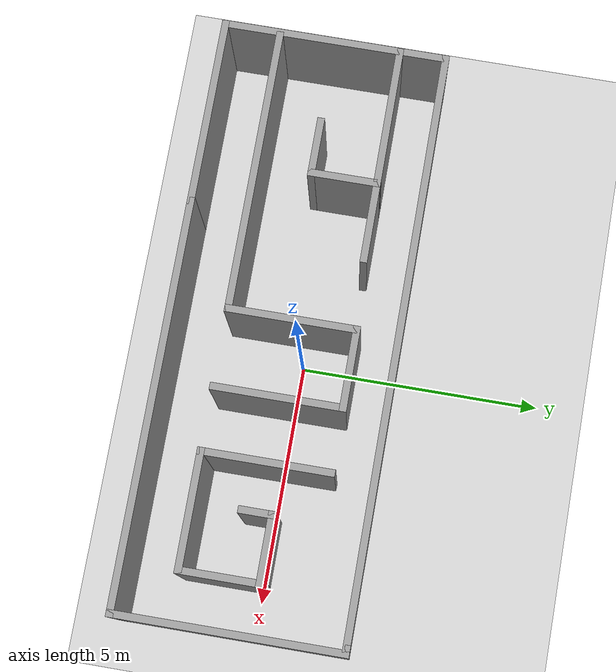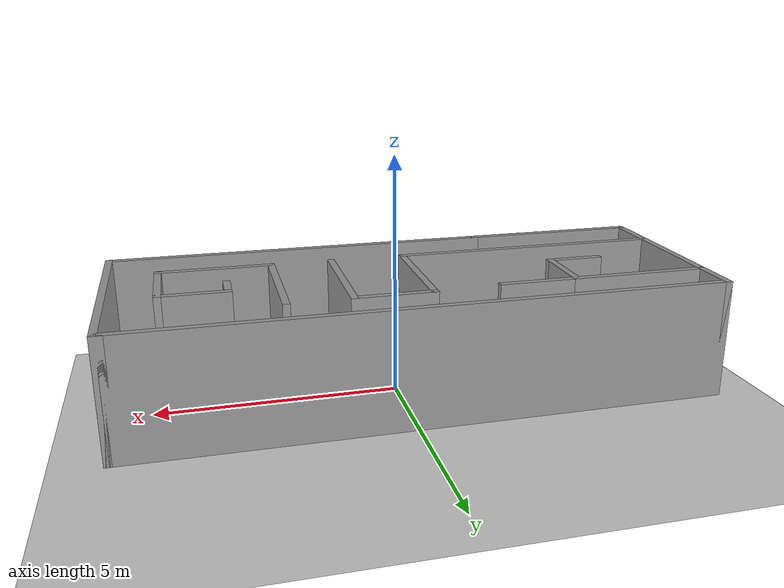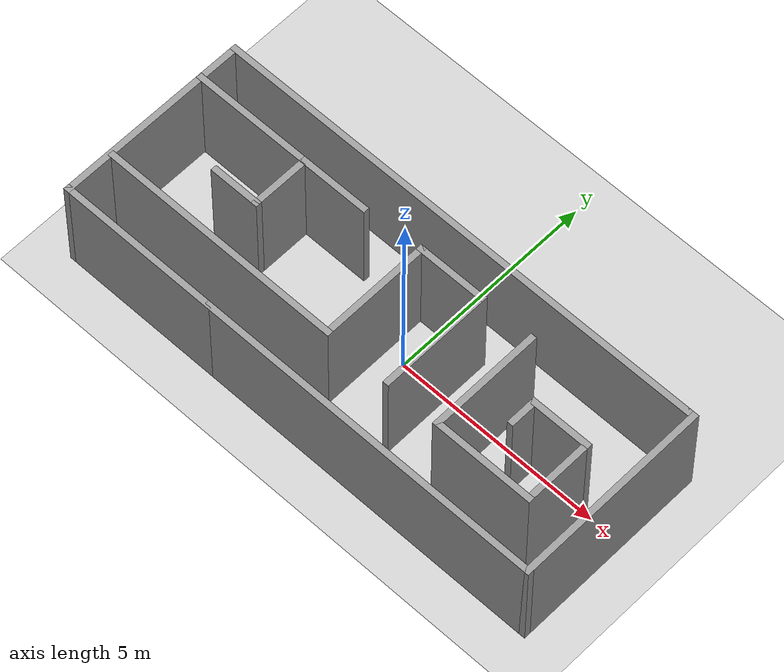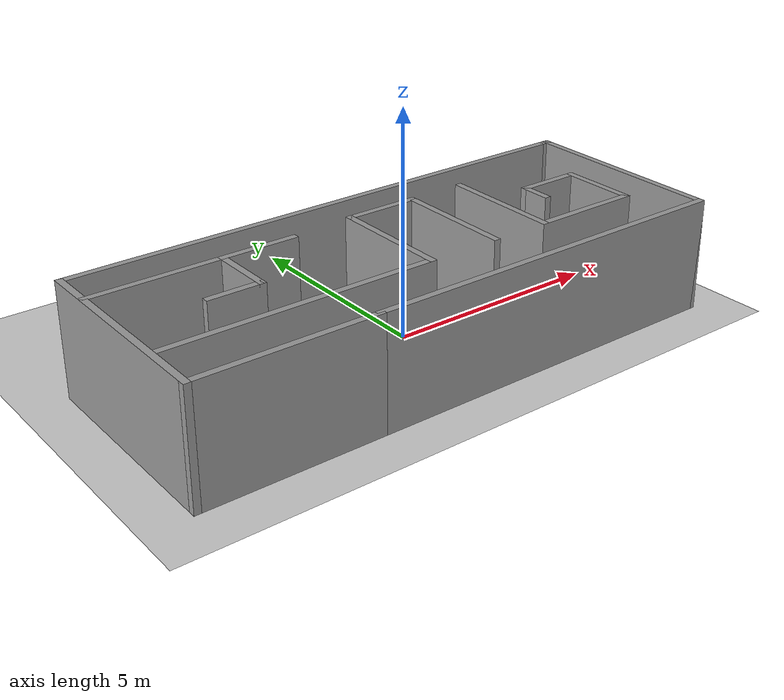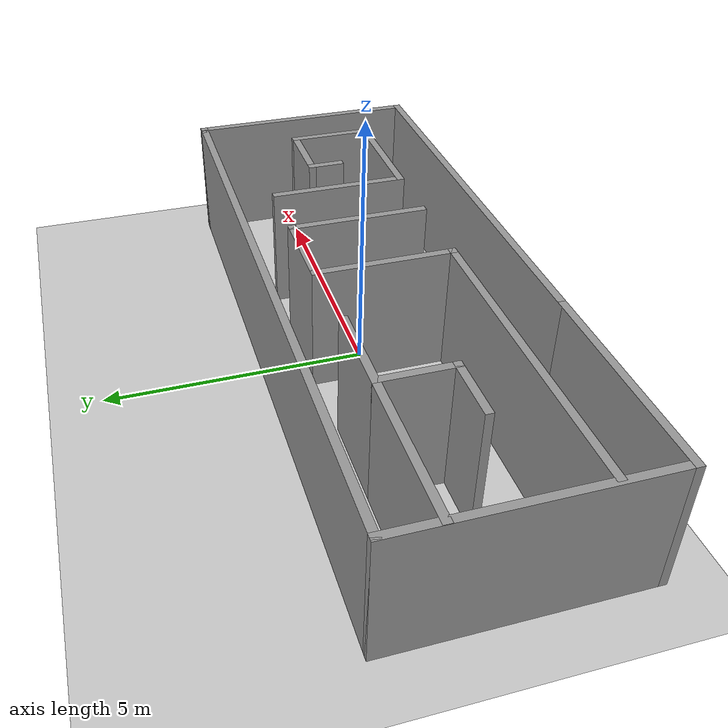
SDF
<sdf version="1.7">
 <world name="default">
  <light name="sun" type="directional">
   <pose>0 0 10 0 -0 0</pose>
   <diffuse>0.8 0.8 0.8 1</diffuse>
   <specular>0.2 0.2 0.2 1</specular>
   <attenuation>
    <range>1000</range>
    <constant>0.9</constant>
    <linear>0.01</linear>
    <quadratic>0.001</quadratic>
   </attenuation>
   <direction>-0.5 0.1 -0.9</direction>
   <spot><inner_angle>0</inner_angle><outer_angle>0</outer_angle><falloff>0</falloff></spot>
  </light>
  <model name="ground_plane">
   <static>1</static>
   <link name="link">
    <collision name="collision">
     <geometry><plane><normal>0 0 1</normal><size>100 100</size></plane></geometry>
     <surface>
      <contact><collide_bitmask>65535</collide_bitmask></contact>
      <friction><ode><mu>100</mu><mu2>50</mu2></ode></friction>
     </surface>
    </collision>
    <visual name="visual">
     <cast_shadows>0</cast_shadows>
     <geometry><plane><normal>0 0 1</normal><size>100 100</size></plane></geometry>
     <material>
      <script><uri>file://media/materials/scripts/gazebo.material</uri><name>Gazebo/Grey</name></script>
     </material>
    </visual>
   </link>
  </model>
  <gravity>0 0 -9.8</gravity>
  <magnetic_field>6e-06 2.3e-05 -4.2e-05</magnetic_field>
  <atmosphere type="adiabatic"/>
  <physics type="ode">
   <max_step_size>0.001</max_step_size>
   <real_time_factor>1</real_time_factor>
   <real_time_update_rate>1000</real_time_update_rate>
  </physics>
  <scene><ambient>0.4 0.4 0.4 1</ambient><background>0.7 0.7 0.7 1</background><shadows>1</shadows></scene>
  <spherical_coordinates>
   <surface_model>EARTH_WGS84</surface_model>
   <latitude_deg>0</latitude_deg>
   <longitude_deg>0</longitude_deg>
   <elevation>0</elevation>
   <heading_deg>0</heading_deg>
  </spherical_coordinates>
  <model name="map1">
   <pose>-0.352688 -0.399658 0 0 -0 0</pose>
   <link name="Wall_0">
    <collision name="Wall_0_Collision">
     <geometry><box><size>8.5 0.15 2.5</size></box></geometry>
     <pose>0 0 1.25 0 -0 0</pose>
    </collision>
    <visual name="Wall_0_Visual">
     <pose>0 0 1.25 0 -0 0</pose>
     <geometry><box><size>8.5 0.15 2.5</size></box></geometry>
     <material>
      <script><uri>file://media/materials/scripts/gazebo.material</uri><name>Gazebo/Grey</name></script>
      <ambient>1 1 1 1</ambient>
     </material>
     <meta><layer>0</layer></meta>
    </visual>
    <pose>1.925 -2.3 0 0 -0 0</pose>
   </link>
   <link name="Wall_10">
    <collision name="Wall_10_Collision">
     <geometry><box><size>1.25 0.15 2.5</size></box></geometry>
     <pose>0 0 1.25 0 -0 0</pose>
    </collision>
    <visual name="Wall_10_Visual">
     <pose>0 0 1.25 0 -0 0</pose>
     <geometry><box><size>1.25 0.15 2.5</size></box></geometry>
     <material>
      <script><uri>file://media/materials/scripts/gazebo.material</uri><name>Gazebo/Grey</name></script>
      <ambient>1 1 1 1</ambient>
     </material>
     <meta><layer>0</layer></meta>
    </visual>
    <pose>-3.79215 -0.00155 0 0 -0 3.14159</pose>
   </link>
   <link name="Wall_12">
    <collision name="Wall_12_Collision">
     <geometry><box><size>6 0.15 2.5</size></box></geometry>
     <pose>0 0 1.25 0 -0 0</pose>
    </collision>
    <visual name="Wall_12_Visual">
     <pose>0 0 1.25 0 -0 0</pose>
     <geometry><box><size>6 0.15 2.5</size></box></geometry>
     <material>
      <script><uri>file://media/materials/scripts/gazebo.material</uri><name>Gazebo/Grey</name></script>
      <ambient>1 1 1 1</ambient>
     </material>
     <meta><layer>0</layer></meta>
    </visual>
    <pose>-3.11425 -1.15108 0 0 -0 0</pose>
   </link>
   <link name="Wall_13">
    <collision name="Wall_13_Collision">
     <geometry><box><size>2.75 0.15 2.5</size></box></geometry>
     <pose>0 0 1.25 0 -0 0</pose>
    </collision>
    <visual name="Wall_13_Visual">
     <pose>0 0 1.25 0 -0 0</pose>
     <geometry><box><size>2.75 0.15 2.5</size></box></geometry>
     <material>
      <script><uri>file://media/materials/scripts/gazebo.material</uri><name>Gazebo/Grey</name></script>
      <ambient>1 1 1 1</ambient>
     </material>
     <meta><layer>0</layer></meta>
    </visual>
    <pose>-0.18925 0.148925 0 0 -0 1.5708</pose>
   </link>
   <link name="Wall_14">
    <collision name="Wall_14_Collision">
     <geometry><box><size>1.75 0.15 2.5</size></box></geometry>
     <pose>0 0 1.25 0 -0 0</pose>
    </collision>
    <visual name="Wall_14_Visual">
     <pose>0 0 1.25 0 -0 0</pose>
     <geometry><box><size>1.75 0.15 2.5</size></box></geometry>
     <material>
      <script><uri>file://media/materials/scripts/gazebo.material</uri><name>Gazebo/Grey</name></script>
      <ambient>1 1 1 1</ambient>
     </material>
     <meta><layer>0</layer></meta>
    </visual>
    <pose>0.61075 1.44893 0 0 -0 0</pose>
   </link>
   <link name="Wall_15">
    <collision name="Wall_15_Collision">
     <geometry><box><size>2.75 0.15 2.5</size></box></geometry>
     <pose>0 0 1.25 0 -0 0</pose>
    </collision>
    <visual name="Wall_15_Visual">
     <pose>0 0 1.25 0 -0 0</pose>
     <geometry><box><size>2.75 0.15 2.5</size></box></geometry>
     <material>
      <script><uri>file://media/materials/scripts/gazebo.material</uri><name>Gazebo/Grey</name></script>
      <ambient>1 1 1 1</ambient>
     </material>
     <meta><layer>0</layer></meta>
    </visual>
    <pose>1.41075 0.148925 0 0 -0 -1.5708</pose>
   </link>
   <link name="Wall_17">
    <collision name="Wall_17_Collision">
     <geometry><box><size>1.75 0.15 2.5</size></box></geometry>
     <pose>0 0 1.25 0 -0 0</pose>
    </collision>
    <visual name="Wall_17_Visual">
     <pose>0 0 1.25 0 -0 0</pose>
     <geometry><box><size>1.75 0.15 2.5</size></box></geometry>
     <material>
      <script><uri>file://media/materials/scripts/gazebo.material</uri><name>Gazebo/Grey</name></script>
      <ambient>1 1 1 1</ambient>
     </material>
     <meta><layer>0</layer></meta>
    </visual>
    <pose>-2.44215 1.34845 0 0 -0 0</pose>
   </link>
   <link name="Wall_19">
    <collision name="Wall_19_Collision">
     <geometry><box><size>2.75 0.15 2.5</size></box></geometry>
     <pose>0 0 1.25 0 -0 0</pose>
    </collision>
    <visual name="Wall_19_Visual">
     <pose>0 0 1.25 0 -0 0</pose>
     <geometry><box><size>2.75 0.15 2.5</size></box></geometry>
     <material>
      <script><uri>file://media/materials/scripts/gazebo.material</uri><name>Gazebo/Grey</name></script>
      <ambient>1 1 1 1</ambient>
     </material>
     <meta><layer>0</layer></meta>
    </visual>
    <pose>2.7157 0.141025 0 0 -0 -1.5708</pose>
   </link>
   <link name="Wall_2">
    <collision name="Wall_2_Collision">
     <geometry><box><size>4 0.15 2.5</size></box></geometry>
     <pose>0 0 1.25 0 -0 0</pose>
    </collision>
    <visual name="Wall_2_Visual">
     <pose>0 0 1.25 0 -0 0</pose>
     <geometry><box><size>4 0.15 2.5</size></box></geometry>
     <material>
      <script><uri>file://media/materials/scripts/gazebo.material</uri><name>Gazebo/Grey</name></script>
      <ambient>1 1 1 1</ambient>
     </material>
     <meta><layer>0</layer></meta>
    </visual>
    <pose>-4.175 -2.3 0 0 -0 3.14159</pose>
   </link>
   <link name="Wall_20">
    <collision name="Wall_20_Collision">
     <geometry><box><size>2.5 0.15 2.5</size></box></geometry>
     <pose>0 0 1.25 0 -0 0</pose>
    </collision>
    <visual name="Wall_20_Visual">
     <pose>0 0 1.25 0 -0 0</pose>
     <geometry><box><size>2.5 0.15 2.5</size></box></geometry>
     <material>
      <script><uri>file://media/materials/scripts/gazebo.material</uri><name>Gazebo/Grey</name></script>
      <ambient>1 1 1 1</ambient>
     </material>
     <meta><layer>0</layer></meta>
    </visual>
    <pose>3.8907 -1.15898 0 0 -0 0</pose>
   </link>
   <link name="Wall_21">
    <collision name="Wall_21_Collision">
     <geometry><box><size>1.75 0.15 2.5</size></box></geometry>
     <pose>0 0 1.25 0 -0 0</pose>
    </collision>
    <visual name="Wall_21_Visual">
     <pose>0 0 1.25 0 -0 0</pose>
     <geometry><box><size>1.75 0.15 2.5</size></box></geometry>
     <material>
      <script><uri>file://media/materials/scripts/gazebo.material</uri><name>Gazebo/Grey</name></script>
      <ambient>1 1 1 1</ambient>
     </material>
     <meta><layer>0</layer></meta>
    </visual>
    <pose>5.0657 -0.358975 0 0 -0 1.5708</pose>
   </link>
   <link name="Wall_22">
    <collision name="Wall_22_Collision">
     <geometry><box><size>1.5 0.15 2.5</size></box></geometry>
     <pose>0 0 1.25 0 -0 0</pose>
    </collision>
    <visual name="Wall_22_Visual">
     <pose>0 0 1.25 0 -0 0</pose>
     <geometry><box><size>1.5 0.15 2.5</size></box></geometry>
     <material>
      <script><uri>file://media/materials/scripts/gazebo.material</uri><name>Gazebo/Grey</name></script>
      <ambient>1 1 1 1</ambient>
     </material>
     <meta><layer>0</layer></meta>
    </visual>
    <pose>4.3907 0.441025 0 0 -0 3.14159</pose>
   </link>
   <link name="Wall_23">
    <collision name="Wall_23_Collision">
     <geometry><box><size>0.75 0.15 2.5</size></box></geometry>
     <pose>0 0 1.25 0 -0 0</pose>
    </collision>
    <visual name="Wall_23_Visual">
     <pose>0 0 1.25 0 -0 0</pose>
     <geometry><box><size>0.75 0.15 2.5</size></box></geometry>
     <material>
      <script><uri>file://media/materials/scripts/gazebo.material</uri><name>Gazebo/Grey</name></script>
      <ambient>1 1 1 1</ambient>
     </material>
     <meta><layer>0</layer></meta>
    </visual>
    <pose>3.7157 0.141025 0 0 -0 -1.5708</pose>
   </link>
   <link name="Wall_3">
    <collision name="Wall_3_Collision">
     <geometry><box><size>4.75 0.15 2.5</size></box></geometry>
     <pose>0 0 1.25 0 -0 0</pose>
    </collision>
    <visual name="Wall_3_Visual">
     <pose>0 0 1.25 0 -0 0</pose>
     <geometry><box><size>4.75 0.15 2.5</size></box></geometry>
     <material>
      <script><uri>file://media/materials/scripts/gazebo.material</uri><name>Gazebo/Grey</name></script>
      <ambient>1 1 1 1</ambient>
     </material>
     <meta><layer>0</layer></meta>
    </visual>
    <pose>-6.1 0 0 0 -0 1.5708</pose>
   </link>
   <link name="Wall_4">
    <collision name="Wall_4_Collision">
     <geometry><box><size>12.25 0.15 2.5</size></box></geometry>
     <pose>0 0 1.25 0 -0 0</pose>
    </collision>
    <visual name="Wall_4_Visual">
     <pose>0 0 1.25 0 -0 0</pose>
     <geometry><box><size>12.25 0.15 2.5</size></box></geometry>
     <material>
      <script><uri>file://media/materials/scripts/gazebo.material</uri><name>Gazebo/Grey</name></script>
      <ambient>1 1 1 1</ambient>
     </material>
     <meta><layer>0</layer></meta>
    </visual>
    <pose>-0.05 2.3 0 0 -0 0</pose>
   </link>
   <link name="Wall_5">
    <collision name="Wall_5_Collision">
     <geometry><box><size>0.25 0.15 2.5</size></box></geometry>
     <pose>0 0 1.25 0 -0 0</pose>
    </collision>
    <visual name="Wall_5_Visual">
     <pose>0 0 1.25 0 -0 0</pose>
     <geometry><box><size>0.25 0.15 2.5</size></box></geometry>
     <material>
      <script><uri>file://media/materials/scripts/gazebo.material</uri><name>Gazebo/Grey</name></script>
      <ambient>1 1 1 1</ambient>
     </material>
     <meta><layer>0</layer></meta>
    </visual>
    <pose>6.05 2.3 0 0 -0 0</pose>
   </link>
   <link name="Wall_6">
    <collision name="Wall_6_Collision">
     <geometry><box><size>4.75 0.15 2.5</size></box></geometry>
     <pose>0 0 1.25 0 -0 0</pose>
    </collision>
    <visual name="Wall_6_Visual">
     <pose>0 0 1.25 0 -0 0</pose>
     <geometry><box><size>4.75 0.15 2.5</size></box></geometry>
     <material>
      <script><uri>file://media/materials/scripts/gazebo.material</uri><name>Gazebo/Grey</name></script>
      <ambient>1 1 1 1</ambient>
     </material>
     <meta><layer>0</layer></meta>
    </visual>
    <pose>6.1 0 0 0 -0 -1.5708</pose>
   </link>
   <link name="Wall_8">
    <collision name="Wall_8_Collision">
     <geometry><box><size>3 0.15 2.5</size></box></geometry>
     <pose>0 0 1.25 0 -0 0</pose>
    </collision>
    <visual name="Wall_8_Visual">
     <pose>0 0 1.25 0 -0 0</pose>
     <geometry><box><size>3 0.15 2.5</size></box></geometry>
     <material>
      <script><uri>file://media/materials/scripts/gazebo.material</uri><name>Gazebo/Grey</name></script>
      <ambient>1 1 1 1</ambient>
     </material>
     <meta><layer>0</layer></meta>
    </visual>
    <pose>-4.66715 1.34845 0 0 -0 0</pose>
   </link>
   <link name="Wall_9">
    <collision name="Wall_9_Collision">
     <geometry><box><size>1.5 0.15 2.5</size></box></geometry>
     <pose>0 0 1.25 0 -0 0</pose>
    </collision>
    <visual name="Wall_9_Visual">
     <pose>0 0 1.25 0 -0 0</pose>
     <geometry><box><size>1.5 0.15 2.5</size></box></geometry>
     <material>
      <script><uri>file://media/materials/scripts/gazebo.material</uri><name>Gazebo/Grey</name></script>
      <ambient>1 1 1 1</ambient>
     </material>
     <meta><layer>0</layer></meta>
    </visual>
    <pose>-3.24215 0.67345 0 0 -0 -1.5708</pose>
   </link>
   <static>1</static>
  </model>
 </world>
</sdf>
